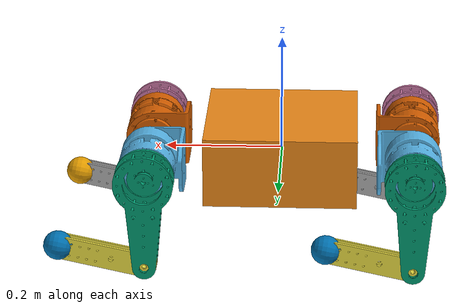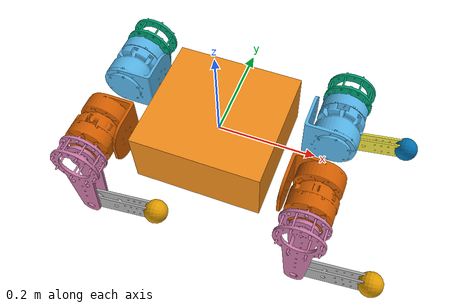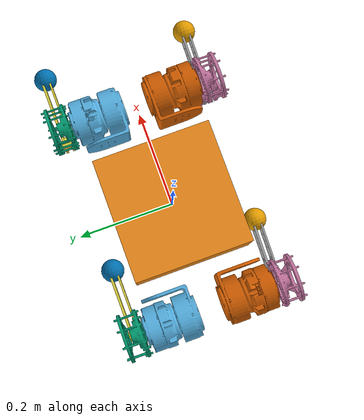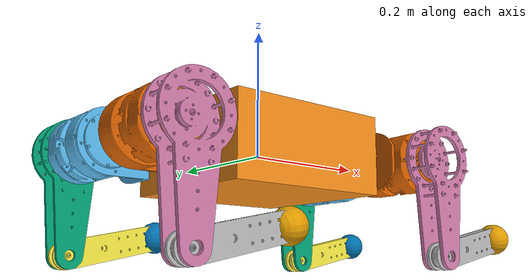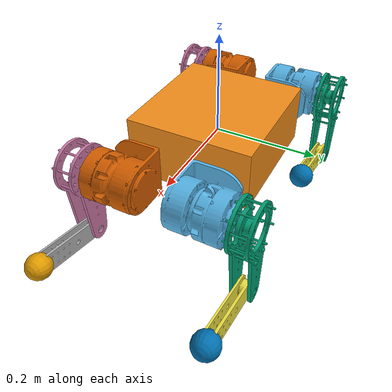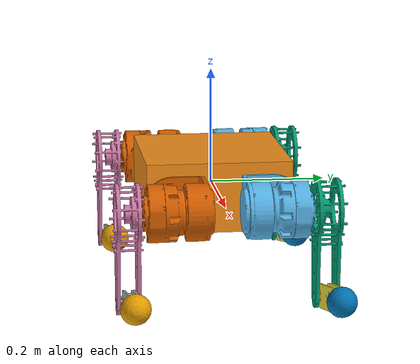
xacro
<?xml version="1.0"?>

<robot name="go2" xmlns:xacro="http://www.ros.org/wiki/xacro">

    <xacro:arg name="DEBUG" default="false"/>
    <xacro:arg name="gpu" default="true"/>
    <xacro:property name="gpu" value="$(arg gpu)" />
    <xacro:arg name="organize_cloud" default="true"/>
    <xacro:property name="organize_cloud" value="$(arg organize_cloud)" />
    <xacro:arg name="use_nominal_extrinsics" default="false"/>

    <xacro:include filename="$(find unitree_go2_description)/xacro/const.xacro"/>
    <xacro:include filename="$(find unitree_go2_description)/xacro/materials.xacro"/>
    <xacro:include filename="$(find unitree_go2_description)/xacro/leg.xacro"/>
    <xacro:include filename="$(find unitree_go2_description)/xacro/ros2_control.xacro"/>
    <!-- 开启gazebo仿真 -->

    <!-- Rotor related joint and link is only for demonstrate location. -->
    <!-- Actually, the rotor will rotate and the joint is not fixed. Reduction ratio should be considered. -->

    <!-- Debug mode will hung up the robot, use "true" or "false" to switch it. -->

    <xacro:if value="$(arg DEBUG)">
        <link name="world"/>
        <joint name="base_static_joint" type="fixed">
            <origin rpy="0 0 0" xyz="0 0 0"/>
            <parent link="world"/>
            <child link="base"/>
        </joint>
    </xacro:if>

    <link name="base"> </link>
    <joint name="floating_base" type="fixed">
        <origin rpy="0 0 0" xyz="0 0 0"/>
        <parent link="base"/>
        <child link="trunk"/>
    </joint>

    <!-- gazebo专用 -->

    <link name="camera_link">

    </link>
    <joint name="camera_joint" type="fixed">
        <origin rpy="0 0.0 0.0" xyz="0 0 0.45"/>
        <parent link="trunk"/>
        <child link="camera_link"/>
    </joint>

    <link name="camera_link_fake"></link>
  <joint name="camera_joint_fake" type="fixed">
    <origin xyz="0 0 0" rpy="-1.57 0 -1.57 "/>
    <parent link="camera_link"/>
    <child link="camera_link_fake"/>
  </joint>

    <link name="trunk">
        <visual>
            <origin rpy="0 0 0" xyz="0 0 0"/>
            <geometry>
                <box size="${trunk_length} ${trunk_width} ${trunk_height}"/>
            </geometry>
            <material name="orange"/>
        </visual>
        <collision>
            <origin rpy="0 0 0" xyz="0 0 0"/>
            <geometry>
                <box size="${trunk_length} ${trunk_width} ${trunk_height}"/>
            </geometry>
        </collision>
        <inertial>
            <origin rpy="0 0 0" xyz="${trunk_com_x} ${trunk_com_y} ${trunk_com_z}"/>
            <mass value="${trunk_mass}"/>
            <inertia
                ixx="${trunk_ixx}" ixy="${trunk_ixy}" ixz="${trunk_ixz}"
                iyy="${trunk_iyy}" iyz="${trunk_iyz}"
                izz="${trunk_izz}"/>
        </inertial>
    </link>

    <joint name="imu_joint" type="fixed">
        <parent link="trunk"/>
        <child link="imu_link"/>
        <origin rpy="0 0 0" xyz="0 0 0"/>
    </joint>

    <link name="imu_link">
        <inertial>
            <mass value="0.001"/>
            <origin rpy="0 0 0" xyz="0 0 0"/>
            <inertia ixx="0.0001" ixy="0" ixz="0" iyy="0.0001" iyz="0" izz="0.0001"/>
        </inertial>
        <visual>
            <origin rpy="0 0 0" xyz="0 0 0"/>
            <geometry>
                <box size="0.001 0.001 0.001"/>
            </geometry>
        </visual>
        <collision>
            <origin rpy="0 0 0" xyz="0 0 0"/>
            <geometry>
                <box size=".001 .001 .001"/>
            </geometry>
        </collision>
    </link>
    <xacro:leg name="FR" mirror="-1" mirror_dae= "False" front_hind="1"  front_hind_dae="True"  />
    <xacro:leg name="FL" mirror="1"  mirror_dae="True"   front_hind="1"  front_hind_dae="True"  />
    <xacro:leg name="RR" mirror="-1" mirror_dae="False"  front_hind="-1" front_hind_dae="False" />
    <xacro:leg name="RL" mirror="1"  mirror_dae="True"   front_hind="-1" front_hind_dae="False" />
</robot>

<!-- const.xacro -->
<robot xmlns:xacro="http://www.ros.org/wiki/xacro">
    <!--总重：13.5，腿重：1.9，腿不含hip电机-->

    <!-- Constants for robot dimensions -->
    <xacro:property name="PI" value="3.1415926535897931"/>
    <xacro:property name="stick_mass" value="0.00001"/>

    <!-- simplified collision value -->
    <xacro:property name="trunk_width" value="0.25"/>
    <xacro:property name="trunk_length" value="0.26"/>
    <xacro:property name="trunk_height" value="0.12"/>
    <xacro:property name="hip_radius" value="0.046"/>
    <xacro:property name="hip_length" value="0.04"/>
    <xacro:property name="thigh_shoulder_radius" value="0.041"/>
    <xacro:property name="thigh_shoulder_length" value="0.032"/>
    <xacro:property name="thigh_width" value="0.0245"/>
    <xacro:property name="thigh_height" value="0.034"/>
    <xacro:property name="calf_width" value="0.016"/>
    <xacro:property name="calf_height" value="0.016"/>
    <xacro:property name="foot_radius" value="0.035"/>
    <xacro:property name="stick_radius" value="0.01"/>
    <xacro:property name="stick_length" value="0.2"/>

    <!-- kinematic value -->
    <xacro:property name="thigh_offset" value="0.08"/>  <!--标识大腿板距离calf电机的偏移-->
    <xacro:property name="thigh_length" value="0.15"/>  <!--标识大腿长度，以及calf电机的关节偏移-->
    <xacro:property name="calf_length" value="0.15"/>

    <!-- leg offset from trunk center value -->
    <xacro:property name="leg_offset_x" value="0.226"/>
    <xacro:property name="leg_offset_y" value="0.085"/>
    <xacro:property name="hip_offset" value="0.0955"/>  <!--标识了hip的碰撞偏移属性-->

    <!-- offset of link locations (left front) -->
    <xacro:property name="hip_offset_x" value="0.1934"/>
    <xacro:property name="hip_offset_y" value="0.0465"/>
    <xacro:property name="hip_offset_z" value="0.0"/>

    <!--未使用参数-->
    <xacro:property name="thigh_offset_x" value="0"/>
    <xacro:property name="thigh_offset_y" value="0.0955"/>
    <xacro:property name="thigh_offset_z" value="0.0"/>

    <!--未使用参数-->
    <xacro:property name="calf_offset_x" value="0.0"/>
    <xacro:property name="calf_offset_y" value="0.0"/>
    <xacro:property name="calf_offset_z" value="-0.213"/>

    <!-- joint limits -->
    <xacro:property name="damping" value="0.0"/>
    <xacro:property name="friction" value="0.0"/>
    <xacro:property name="hip_position_max" value="1.0472"/>
    <xacro:property name="hip_position_min" value="-1.0472"/>
    <xacro:property name="hip_velocity_max" value="30.1"/>
    <xacro:property name="hip_torque_max" value="23.7"/>
    <xacro:property name="thigh_position_max" value="3.4907"/>
    <xacro:property name="thigh_position_min" value="-1.5708"/>
    <xacro:property name="thigh_velocity_max" value="30.1"/>
    <xacro:property name="thigh_torque_max" value="23.7"/>
    <xacro:property name="calf_position_max" value="-0.83776"/>
    <xacro:property name="calf_position_min" value="-2.7227"/>
    <xacro:property name="calf_velocity_max" value="20.06"/>
    <xacro:property name="calf_torque_max" value="35.55"/>

    <!-- dynamics inertial value -->
    <!-- trunk -->

    <xacro:property name="trunk_mass" value="5.9"/>       <!--躯干质量-->
    <xacro:property name="trunk_com_x" value="0.021112"/>   <!--定义了惯性矩阵的质心（质心位置）相对于链接坐标系的偏移-->
    <xacro:property name="trunk_com_y" value="0.00"/>
    <xacro:property name="trunk_com_z" value="-0.005366"/>
    <xacro:property name="trunk_ixx" value="0.02448"/>      <!--躯干的惯性矩阵 -->
    <xacro:property name="trunk_ixy" value="0.00012166"/>
    <xacro:property name="trunk_ixz" value="0.0014849"/>
    <xacro:property name="trunk_iyy" value="0.098077"/>
    <xacro:property name="trunk_iyz" value="-3.12E-05"/>
    <xacro:property name="trunk_izz" value="0.107"/>

    <!-- hip (left front) -->
    <xacro:property name="hip_mass" value="0.91"/>
    <xacro:property name="hip_com_x" value="-0.0054"/>
    <xacro:property name="hip_com_y" value="0.00194"/>
    <xacro:property name="hip_com_z" value="-0.000105"/>
    <xacro:property name="hip_ixx" value="0.00048"/>
    <xacro:property name="hip_ixy" value="-3.01E-06"/>
    <xacro:property name="hip_ixz" value="1.11E-06"/>
    <xacro:property name="hip_iyy" value="0.000884"/>
    <xacro:property name="hip_iyz" value="-1.42E-06"/>
    <xacro:property name="hip_izz" value="0.000596"/>

    <!-- thigh -->
    <xacro:property name="thigh_mass" value="0.89"/>
    <xacro:property name="thigh_com_x" value="-0.00374"/>
    <xacro:property name="thigh_com_y" value="-0.0223"/>
    <xacro:property name="thigh_com_z" value="-0.0327"/>
    <xacro:property name="thigh_ixx" value="0.00584"/>
    <xacro:property name="thigh_ixy" value="8.72E-05"/>
    <xacro:property name="thigh_ixz" value="-0.000289"/>
    <xacro:property name="thigh_iyy" value="0.0058"/>
    <xacro:property name="thigh_iyz" value="0.000808"/>
    <xacro:property name="thigh_izz" value="0.00103"/>

    <!-- calf -->
    <xacro:property name="calf_mass" value="0.1"/>
    <xacro:property name="calf_com_x" value="0.00548"/>
    <xacro:property name="calf_com_y" value="-0.000975"/>
    <xacro:property name="calf_com_z" value="-0.115"/>
    <xacro:property name="calf_ixx" value="0.00108"/>
    <xacro:property name="calf_ixy" value="3.4E-07"/>
    <xacro:property name="calf_ixz" value="1.72E-05"/>
    <xacro:property name="calf_iyy" value="0.0011"/>
    <xacro:property name="calf_iyz" value="8.28E-06"/>
    <xacro:property name="calf_izz" value="3.29E-05"/>

    <!-- foot -->
    <xacro:property name="foot_mass" value="0.06"/>

</robot>

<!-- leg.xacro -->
<robot xmlns:xacro="http://www.ros.org/wiki/xacro">

    <xacro:macro name="leg" params="name mirror mirror_dae front_hind front_hind_dae">

        <joint name="${name}_hip_joint" type="revolute">
            <xacro:if value="${(mirror_dae == False) and (front_hind_dae == True)}">
                <origin rpy="0 0 0" xyz="${leg_offset_x} ${-leg_offset_y} 0"/>
            </xacro:if>
            <xacro:if value="${(mirror_dae == True) and (front_hind_dae == True)}">
                <origin rpy="0 0 0" xyz="${leg_offset_x} ${leg_offset_y} 0"/>
            </xacro:if>
            <xacro:if value="${(mirror_dae == False) and (front_hind_dae == False)}">
                <origin rpy="0 0 0" xyz="${-leg_offset_x} ${-leg_offset_y} 0"/>
            </xacro:if>
            <xacro:if value="${(mirror_dae == True) and (front_hind_dae == False)}">
                <origin rpy="0 0 0" xyz="${-leg_offset_x} ${leg_offset_y} 0"/>
            </xacro:if>
            <parent link="trunk"/>
            <child link="${name}_hip"/>
            <axis xyz="1 0 0"/>
            <dynamics damping="${damping}" friction="${friction}"/>   <!-- damping,friction对应gazebo中的阻尼系数和摩擦系数 -->
            <xacro:if value="${(mirror_dae == True)}">
                <limit effort="${hip_torque_max}" velocity="${hip_velocity_max}" lower="${hip_position_min}"
                       upper="${hip_position_max}"/>    <!--关节的力，速度，位置限幅-->
            </xacro:if>
            <xacro:if value="${(mirror_dae == False)}">
                <limit effort="${hip_torque_max}" velocity="${hip_velocity_max}" lower="${-hip_position_max}"
                       upper="${-hip_position_min}"/>
            </xacro:if>
        </joint>

        <link name="${name}_hip">
            <visual>
                <xacro:if value="${(mirror_dae == True) and (front_hind_dae == True)}">
                    <origin rpy="0 ${PI} ${-PI/2.0}" xyz="0 0 0"/>
                </xacro:if>
                <xacro:if value="${(mirror_dae == False) and (front_hind_dae == True)}">
                    <origin rpy="${PI} ${PI} ${PI/2.0}" xyz="0 0 0"/>
                </xacro:if>
                <xacro:if value="${(mirror_dae == True) and (front_hind_dae == False)}">
                    <origin rpy="${PI} ${PI} ${-PI/2.0}" xyz="0 0 0"/>
                </xacro:if>
                <xacro:if value="${(mirror_dae == False) and (front_hind_dae == False)}">
                    <origin rpy="0 ${PI} ${PI/2.0}" xyz="0 0 0"/>
                </xacro:if>
                <geometry>
                    <mesh filename="package://unitree_go2_description/meshes/link1.STL" />
                </geometry>
            </visual>
            <collision>
                <origin rpy="${PI/2.0} 0 0" xyz="0 ${hip_offset*mirror} 0"/>
                <geometry>
                    <cylinder length="${hip_length}" radius="${hip_radius}"/>
                </geometry>
            </collision>
            <inertial>
                <origin rpy="0 0 0" xyz="${hip_com_x*front_hind} ${hip_com_y*mirror} ${hip_com_z}"/>
                <mass value="${hip_mass}"/>
                <inertia
                        ixx="${hip_ixx}" ixy="${hip_ixy*mirror*front_hind}" ixz="${hip_ixz*front_hind}"
                        iyy="${hip_iyy}" iyz="${hip_iyz*mirror}"
                        izz="${hip_izz}"/>
            </inertial>
        </link>

        <joint name="${name}_thigh_joint" type="revolute">
            <origin rpy="0 0 0" xyz="0 ${thigh_offset*mirror} 0"/>
            <parent link="${name}_hip"/>
            <child link="${name}_thigh"/>
            <axis xyz="0 1 0"/>
            <dynamics damping="${damping}" friction="${friction}"/>
            <limit effort="${thigh_torque_max}" velocity="${thigh_velocity_max}" lower="${thigh_position_min}"
                   upper="${thigh_position_max}"/>
        </joint>

        <link name="${name}_thigh">
            <visual>
                <xacro:if value="${mirror_dae == True}">
                    <origin rpy="0 0 ${PI/2.0}" xyz="0 0 0"/>
                    <geometry>
                        <mesh filename="package://unitree_go2_description/meshes/link2.STL" />
                    </geometry>
                </xacro:if>
                <xacro:if value="${mirror_dae == False}">
                    <origin rpy="0 0 ${-PI/2.0}" xyz="0 0 0"/>
                    <geometry>
                        <mesh filename="package://unitree_go2_description/meshes/link2.STL" />
                    </geometry>
                </xacro:if>

            </visual>
            <collision>
                <origin rpy="0 ${PI/2.0} 0" xyz="0 0 ${-thigh_length/2.0}"/>
                <geometry>
                    <box size="${thigh_length} ${thigh_width} ${thigh_height}"/>
                </geometry>
            </collision>
            <inertial>
                <origin rpy="0 0 0" xyz="${thigh_com_x} ${thigh_com_y*mirror} ${thigh_com_z}"/>
                <mass value="${thigh_mass}"/>
                <inertia
                        ixx="${thigh_ixx}" ixy="${thigh_ixy*mirror}" ixz="${thigh_ixz}"
                        iyy="${thigh_iyy}" iyz="${thigh_iyz*mirror}"
                        izz="${thigh_izz}"/>
            </inertial>
        </link>

        <joint name="${name}_calf_joint" type="revolute">
            <origin rpy="0 0 0" xyz="0 0 ${-thigh_length}"/>
            <parent link="${name}_thigh"/>
            <child link="${name}_calf"/>
            <axis xyz="0 1 0"/>
            <dynamics damping="${damping}" friction="${friction}"/>
            <limit effort="${calf_torque_max}" velocity="${calf_velocity_max}" lower="${calf_position_min}"
                   upper="${calf_position_max}" position="-0.5"/>
        </joint>

        <link name="${name}_calf">
            <visual>
                <origin rpy="0 0 ${PI/2.0}" xyz="0 0 0"/>
                <geometry>
                    <mesh filename="package://unitree_go2_description/meshes/link3.STL" />
                </geometry>
            </visual>
            <collision>
                <origin rpy="0 ${PI/2.0} 0" xyz="0 0 ${-calf_length/2.0}"/>
                <geometry>
                    <box size="${calf_length} ${calf_width} ${calf_height}"/>
                </geometry>
            </collision>
            <inertial>
                <origin rpy="0 0 0" xyz="${calf_com_x} ${calf_com_y} ${calf_com_z}"/>
                <mass value="${calf_mass}"/>
                <inertia
                        ixx="${calf_ixx}" ixy="${calf_ixy}" ixz="${calf_ixz}"
                        iyy="${calf_iyy}" iyz="${calf_iyz}"
                        izz="${calf_izz}"/>
            </inertial>
        </link>

        <joint name="${name}_foot_fixed" type="fixed">0
            <origin rpy="0 0 0" xyz="0 0 ${-(calf_length)}"/>
            <parent link="${name}_calf"/>
            <child link="${name}_foot"/>
        </joint>

        <link name="${name}_foot">
            <visual>
                <xacro:if value="${mirror_dae == True}">
                    <origin rpy="0 0 ${PI/2.0}" xyz="0 0 0"/>
                </xacro:if>
                <xacro:if value="${mirror_dae == False}">
                    <origin rpy="0 0 ${-PI/2.0}" xyz="0 0 0"/>
                </xacro:if>
                <geometry>
                    <sphere radius="${foot_radius-0.01}"/>
                </geometry>
            </visual>
            <collision>
                <origin rpy="0 0 0" xyz="0 0 0"/>
                <geometry>
                    <sphere radius="${foot_radius-0.01}"/>
                </geometry>
            </collision>
            <inertial>
                <mass value="${foot_mass}"/>
                <inertia
                        ixx="${(2*foot_mass)/5.0*(foot_radius*foot_radius)}" ixy="0.0" ixz="0.0"
                        iyy="${(2*foot_mass)/5.0*(foot_radius*foot_radius)}" iyz="0.0"
                        izz="${(2*foot_mass)/5.0*(foot_radius*foot_radius)}"/>
            </inertial>
        </link>

    </xacro:macro>
</robot>
